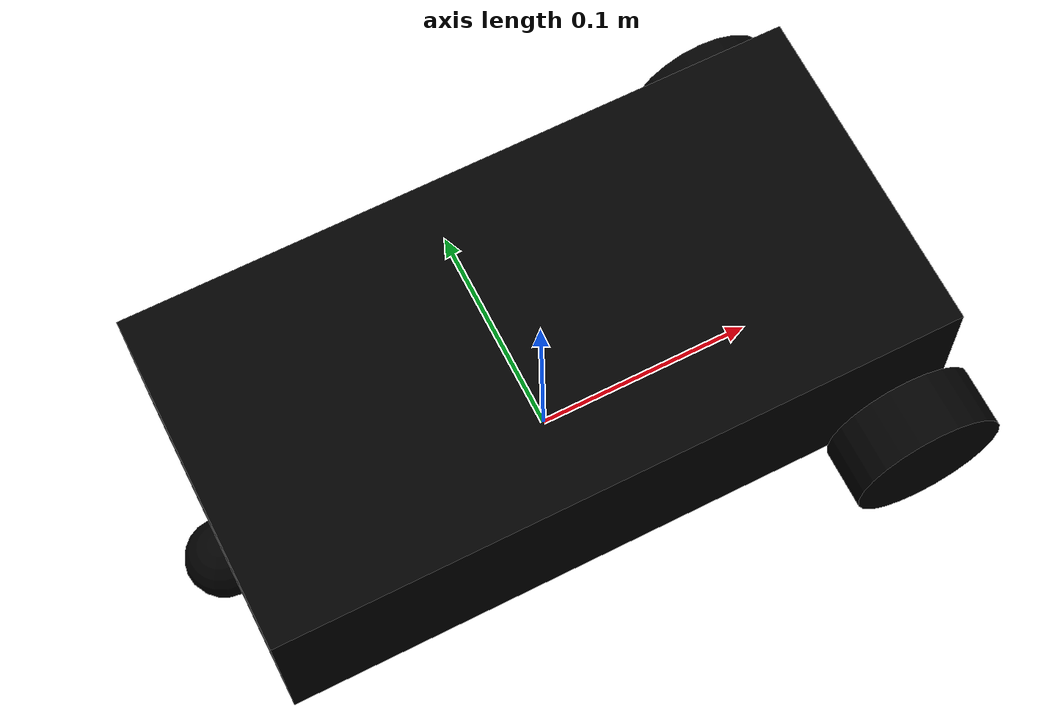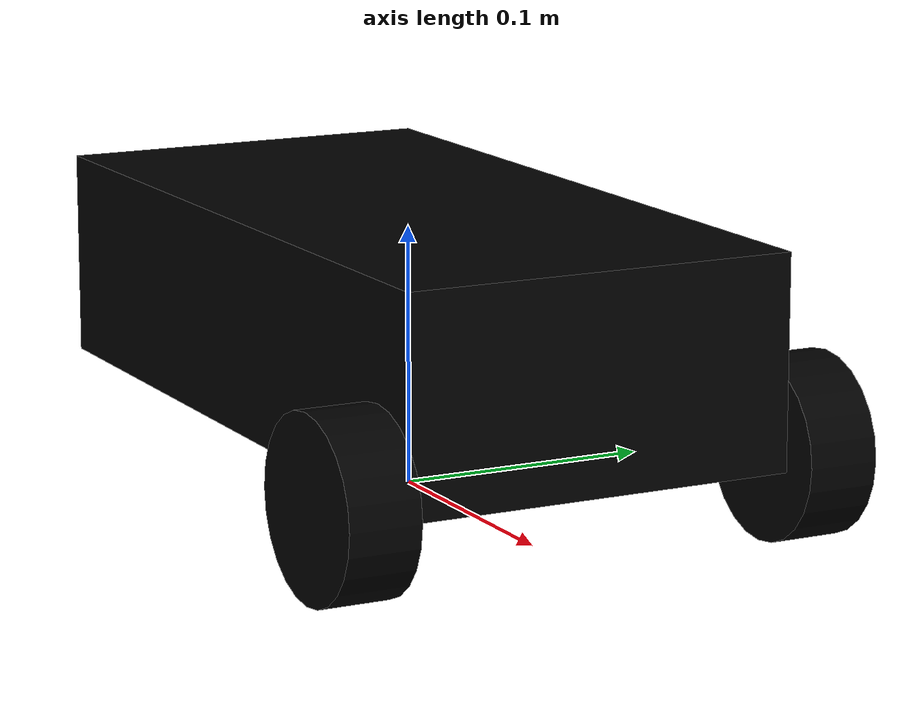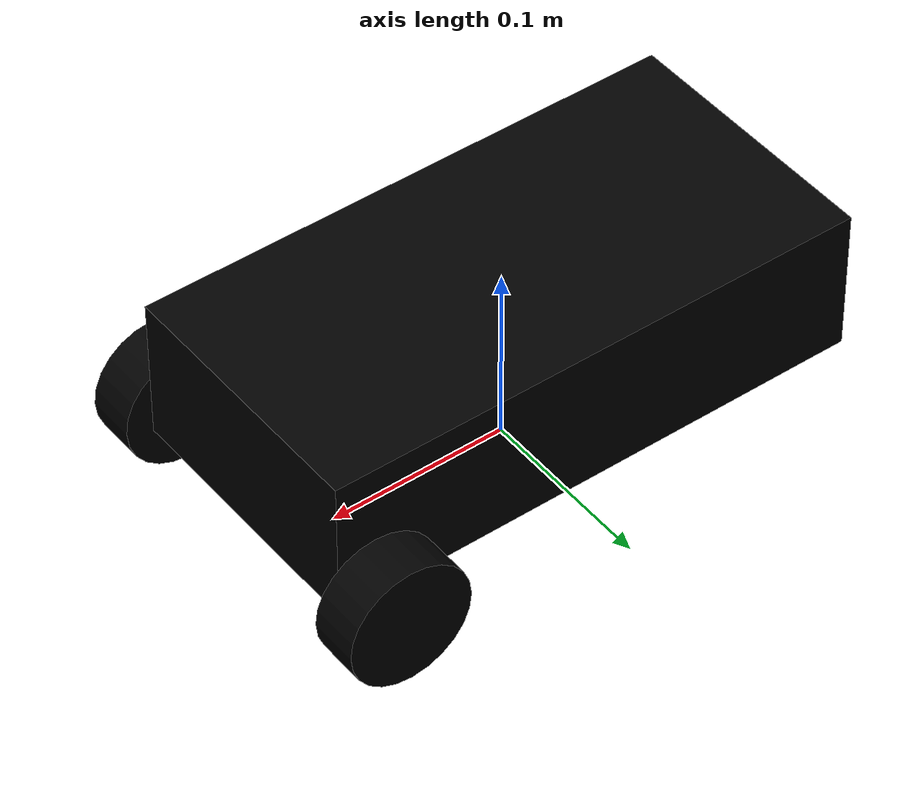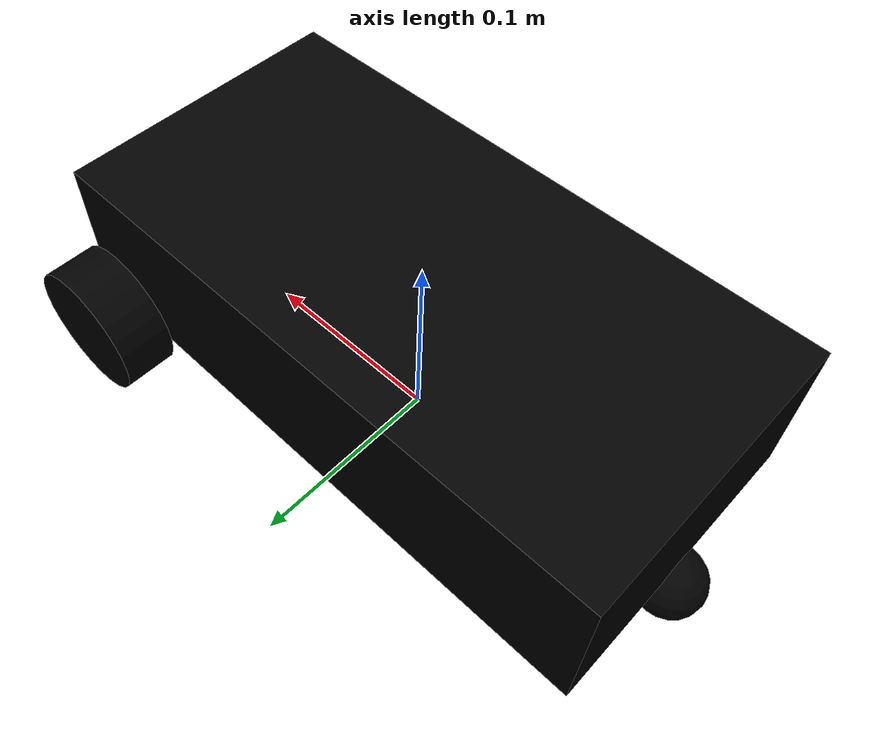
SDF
<?xml version='1.0'?>
<sdf version='1.6'>
  <model name='rover'>
    <link name='base_link'>
      <pose frame=''>-0 0 0.07 0 -0 0</pose>
      <inertial>
        <mass>1.14395</mass>
        <inertia>
          <ixx>0.126164</ixx>
          <ixy>0</ixy>
          <ixz>0</ixz>
          <iyy>0.416519</iyy>
          <iyz>0</iyz>
          <izz>0.481014</izz>
        </inertia>
        <pose frame=''>0 0 0 0 -0 0</pose>
      </inertial>
      <sensor name='sensor_ray' type='ray'>
        <pose frame=''>0 0 0.1 0 -0 0</pose>
        <ray>
          <scan>
            <horizontal>
              <samples>560</samples>
              <resolution>1</resolution>
              <min_angle>-3.14159</min_angle>
              <max_angle>3.139</max_angle>
            </horizontal>
            <vertical>
              <samples>1</samples>
              <min_angle>0</min_angle>
              <max_angle>0</max_angle>
            </vertical>
          </scan>
          <range>
            <min>0.05</min>
            <max>10</max>
          </range>
        </ray>
        <always_on>1</always_on>
        <visualize>0</visualize>
        <update_rate>100</update_rate>
        <plugin name='laser' filename='libgazebo_ros_ray_sensor.so'>
          <ros>
            <namespace>/</namespace>
            <remapping>~/out:=scan</remapping>
          </ros>
          <output_type>sensor_msgs/LaserScan</output_type>
        </plugin>
      </sensor>
      <self_collide>0</self_collide>
      <enable_wind>0</enable_wind>
      <kinematic>0</kinematic>
      <gravity>1</gravity>
      <visual name='visual'>
        <geometry>
          <box>
            <size>0.3 0.15 0.08</size>
          </box>
        </geometry>
        <material>
          <shader type='pixel'>
            <normal_map>__default__</normal_map>
          </shader>
          <script>
            <name>ModelPreview_1::base_link::visual_MATERIAL_</name>
            <uri>__default__</uri>
          </script>
          <ambient>0.451 0.824 0.086 1</ambient>
          <diffuse>0 0 0 1</diffuse>
          <specular>0 0 0 1</specular>
          <emissive>0 0 0 1</emissive>
        </material>
        <pose frame=''>0 0 0 0 -0 0</pose>
        <transparency>0</transparency>
        <cast_shadows>1</cast_shadows>
      </visual>
      <collision name='collision'>
        <laser_retro>0</laser_retro>
        <max_contacts>10</max_contacts>
        <pose frame=''>0 0 0 0 -0 0</pose>
        <geometry>
          <box>
            <size>0.3 0.15 0.08</size>
          </box>
        </geometry>
        <surface>
          <friction>
            <ode>
              <mu>1</mu>
              <mu2>1</mu2>
              <fdir1>0 0 0</fdir1>
              <slip1>0</slip1>
              <slip2>0</slip2>
            </ode>
            <torsional>
              <coefficient>1</coefficient>
              <patch_radius>0</patch_radius>
              <surface_radius>0</surface_radius>
              <use_patch_radius>1</use_patch_radius>
              <ode>
                <slip>0</slip>
              </ode>
            </torsional>
          </friction>
          <bounce>
            <restitution_coefficient>0</restitution_coefficient>
            <threshold>1e+06</threshold>
          </bounce>
          <contact>
            <collide_without_contact>0</collide_without_contact>
            <collide_without_contact_bitmask>1</collide_without_contact_bitmask>
            <collide_bitmask>1</collide_bitmask>
            <ode>
              <soft_cfm>0</soft_cfm>
              <soft_erp>0.2</soft_erp>
              <kp>1e+13</kp>
              <kd>1</kd>
              <max_vel>0</max_vel>
              <min_depth>0</min_depth>
            </ode>
            <bullet>
              <split_impulse>1</split_impulse>
              <split_impulse_penetration_threshold>-0.01</split_impulse_penetration_threshold>
              <soft_cfm>0</soft_cfm>
              <soft_erp>0.2</soft_erp>
              <kp>1e+13</kp>
              <kd>1</kd>
            </bullet>
          </contact>
        </surface>
      </collision>
    </link>
    <link name='caster'>
      <pose frame=''>-0.15 -0 0.017 0 -0 0</pose>
      <inertial>
        <mass>1</mass>
        <inertia>
          <ixx>0.1</ixx>
          <ixy>0</ixy>
          <ixz>0</ixz>
          <iyy>0.1</iyy>
          <iyz>0</iyz>
          <izz>0.1</izz>
        </inertia>
        <pose frame=''>0 0 0 0 -0 0</pose>
      </inertial>
      <self_collide>0</self_collide>
      <enable_wind>0</enable_wind>
      <kinematic>0</kinematic>
      <gravity>1</gravity>
      <visual name='visual'>
        <geometry>
          <sphere>
            <radius>0.017</radius>
          </sphere>
        </geometry>
        <material>
          <shader type='pixel'>
            <normal_map>__default__</normal_map>
          </shader>
          <script>
            <name>ModelPreview_1::caster::visual_MATERIAL_</name>
            <uri>__default__</uri>
          </script>
          <ambient>0 0 0 1</ambient>
          <diffuse>0 0 0 1</diffuse>
          <specular>0 0 0 1</specular>
          <emissive>0 0 0 1</emissive>
        </material>
        <pose frame=''>0 0 0 0 -0 0</pose>
        <transparency>0</transparency>
        <cast_shadows>1</cast_shadows>
      </visual>
      <collision name='collision'>
        <laser_retro>0</laser_retro>
        <max_contacts>10</max_contacts>
        <pose frame=''>0 0 0 0 -0 0</pose>
        <geometry>
          <sphere>
            <radius>0.017</radius>
          </sphere>
        </geometry>
        <surface>
          <friction>
            <ode>
              <mu>0</mu>
              <mu2>0</mu2>
              <fdir1>0 0 0</fdir1>
              <slip1>1</slip1>
              <slip2>1</slip2>
            </ode>
            <torsional>
              <coefficient>1</coefficient>
              <patch_radius>0</patch_radius>
              <surface_radius>0</surface_radius>
              <use_patch_radius>1</use_patch_radius>
              <ode>
                <slip>0</slip>
              </ode>
            </torsional>
          </friction>
          <bounce>
            <restitution_coefficient>0</restitution_coefficient>
            <threshold>1e+06</threshold>
          </bounce>
          <contact>
            <collide_without_contact>0</collide_without_contact>
            <collide_without_contact_bitmask>1</collide_without_contact_bitmask>
            <collide_bitmask>1</collide_bitmask>
            <ode>
              <soft_cfm>0</soft_cfm>
              <soft_erp>0.2</soft_erp>
              <kp>1e+13</kp>
              <kd>1</kd>
              <max_vel>0</max_vel>
              <min_depth>0</min_depth>
            </ode>
            <bullet>
              <split_impulse>1</split_impulse>
              <split_impulse_penetration_threshold>-0.01</split_impulse_penetration_threshold>
              <soft_cfm>0</soft_cfm>
              <soft_erp>0.2</soft_erp>
              <kp>1e+13</kp>
              <kd>1</kd>
            </bullet>
          </contact>
        </surface>
      </collision>
    </link>
    <link name='left_wheel'>
      <pose frame=''>0.13 0.09 0.034 -1.5707 -0 -0</pose>
      <inertial>
        <mass>2</mass>
        <inertia>
          <ixx>0.145833</ixx>
          <ixy>0</ixy>
          <ixz>0</ixz>
          <iyy>0.145833</iyy>
          <iyz>0</iyz>
          <izz>0.125</izz>
        </inertia>
        <pose frame=''>0 0 0 0 -0 0</pose>
      </inertial>
      <self_collide>0</self_collide>
      <enable_wind>0</enable_wind>
      <kinematic>0</kinematic>
      <gravity>1</gravity>
      <visual name='visual'>
        <geometry>
          <cylinder>
            <radius>0.034</radius>
            <length>0.0269999</length>
          </cylinder>
        </geometry>
        <material>
          <shader type='pixel'>
            <normal_map>__default__</normal_map>
          </shader>
          <script>
            <name>ModelPreview_1::left_wheel::visual_MATERIAL_</name>
            <uri>__default__</uri>
          </script>
          <ambient>0 0 0 1</ambient>
          <diffuse>0 0 0 1</diffuse>
          <specular>0 0 0 1</specular>
          <emissive>0 0 0 1</emissive>
        </material>
        <pose frame=''>0 0 0 0 -0 0</pose>
        <transparency>0</transparency>
        <cast_shadows>1</cast_shadows>
      </visual>
      <collision name='collision'>
        <laser_retro>0</laser_retro>
        <max_contacts>10</max_contacts>
        <pose frame=''>0 0 0 0 -0 0</pose>
        <geometry>
          <cylinder>
            <radius>0.034</radius>
            <length>0.027</length>
          </cylinder>
        </geometry>
        <surface>
          <friction>
            <ode>
              <mu>1</mu>
              <mu2>1</mu2>
              <fdir1>0 0 0</fdir1>
              <slip1>0</slip1>
              <slip2>0</slip2>
            </ode>
            <torsional>
              <coefficient>1</coefficient>
              <patch_radius>0</patch_radius>
              <surface_radius>0</surface_radius>
              <use_patch_radius>1</use_patch_radius>
              <ode>
                <slip>0</slip>
              </ode>
            </torsional>
          </friction>
          <bounce>
            <restitution_coefficient>0</restitution_coefficient>
            <threshold>1e+06</threshold>
          </bounce>
          <contact>
            <collide_without_contact>0</collide_without_contact>
            <collide_without_contact_bitmask>1</collide_without_contact_bitmask>
            <collide_bitmask>1</collide_bitmask>
            <ode>
              <soft_cfm>0</soft_cfm>
              <soft_erp>0.2</soft_erp>
              <kp>1e+13</kp>
              <kd>1</kd>
              <max_vel>0</max_vel>
              <min_depth>0</min_depth>
            </ode>
            <bullet>
              <split_impulse>1</split_impulse>
              <split_impulse_penetration_threshold>-0.01</split_impulse_penetration_threshold>
              <soft_cfm>0</soft_cfm>
              <soft_erp>0.2</soft_erp>
              <kp>1e+13</kp>
              <kd>1</kd>
            </bullet>
          </contact>
        </surface>
      </collision>
    </link>
    <link name='right_wheel'>
      <pose frame=''>0.13 -0.09 0.034 -1.5707 -0 -0</pose>
      <inertial>
        <mass>2</mass>
        <inertia>
          <ixx>0.145833</ixx>
          <ixy>0</ixy>
          <ixz>0</ixz>
          <iyy>0.145833</iyy>
          <iyz>0</iyz>
          <izz>0.125</izz>
        </inertia>
        <pose frame=''>0 0 0 0 -0 0</pose>
      </inertial>
      <self_collide>0</self_collide>
      <enable_wind>0</enable_wind>
      <kinematic>0</kinematic>
      <gravity>1</gravity>
      <visual name='visual'>
        <geometry>
          <cylinder>
            <radius>0.034</radius>
            <length>0.027</length>
          </cylinder>
        </geometry>
        <material>
          <shader type='pixel'>
            <normal_map>__default__</normal_map>
          </shader>
          <script>
            <name>ModelPreview_1::right_wheel::visual_MATERIAL_</name>
            <uri>__default__</uri>
          </script>
          <ambient>0 0 0 1</ambient>
          <diffuse>0 0 0 1</diffuse>
          <specular>0 0 0 1</specular>
          <emissive>0 0 0 1</emissive>
        </material>
        <pose frame=''>0 0 0 0 -0 0</pose>
        <transparency>0</transparency>
        <cast_shadows>1</cast_shadows>
      </visual>
      <collision name='collision'>
        <laser_retro>0</laser_retro>
        <max_contacts>10</max_contacts>
        <pose frame=''>0 0 0 0 -0 0</pose>
        <geometry>
          <cylinder>
            <radius>0.034</radius>
            <length>0.027</length>
          </cylinder>
        </geometry>
        <surface>
          <friction>
            <ode>
              <mu>1</mu>
              <mu2>1</mu2>
              <fdir1>0 0 0</fdir1>
              <slip1>0</slip1>
              <slip2>0</slip2>
            </ode>
            <torsional>
              <coefficient>1</coefficient>
              <patch_radius>0</patch_radius>
              <surface_radius>0</surface_radius>
              <use_patch_radius>1</use_patch_radius>
              <ode>
                <slip>0</slip>
              </ode>
            </torsional>
          </friction>
          <bounce>
            <restitution_coefficient>0</restitution_coefficient>
            <threshold>1e+06</threshold>
          </bounce>
          <contact>
            <collide_without_contact>0</collide_without_contact>
            <collide_without_contact_bitmask>1</collide_without_contact_bitmask>
            <collide_bitmask>1</collide_bitmask>
            <ode>
              <soft_cfm>0</soft_cfm>
              <soft_erp>0.2</soft_erp>
              <kp>1e+13</kp>
              <kd>1</kd>
              <max_vel>0</max_vel>
              <min_depth>0</min_depth>
            </ode>
            <bullet>
              <split_impulse>1</split_impulse>
              <split_impulse_penetration_threshold>-0.01</split_impulse_penetration_threshold>
              <soft_cfm>0</soft_cfm>
              <soft_erp>0.2</soft_erp>
              <kp>1e+13</kp>
              <kd>1</kd>
            </bullet>
          </contact>
        </surface>
      </collision>
    </link>
    <joint name='caster_wheel' type='ball'>
      <parent>base_link</parent>
      <child>caster</child>
      <pose frame=''>0 0 0 0 -0 0</pose>
      <physics>
        <ode>
          <limit>
            <cfm>0</cfm>
            <erp>0.2</erp>
          </limit>
          <suspension>
            <cfm>0</cfm>
            <erp>0.2</erp>
          </suspension>
        </ode>
      </physics>
    </joint>
    <joint name='left_wheel_joint' type='revolute'>
      <parent>base_link</parent>
      <child>left_wheel</child>
      <pose frame=''>0 0 0 0 -0 0</pose>
      <axis>
        <xyz>0 0 1</xyz>
        <use_parent_model_frame>0</use_parent_model_frame>
        <limit>
          <lower>-1.79769e+308</lower>
          <upper>1.79769e+308</upper>
          <effort>-1</effort>
          <velocity>-1</velocity>
        </limit>
        <dynamics>
          <spring_reference>0</spring_reference>
          <spring_stiffness>0</spring_stiffness>
          <damping>0</damping>
          <friction>0</friction>
        </dynamics>
      </axis>
      <physics>
        <ode>
          <limit>
            <cfm>0</cfm>
            <erp>0.2</erp>
          </limit>
          <suspension>
            <cfm>0</cfm>
            <erp>0.2</erp>
          </suspension>
        </ode>
      </physics>
    </joint>
    <joint name='right_wheel_joint' type='revolute'>
      <parent>base_link</parent>
      <child>right_wheel</child>
      <pose frame=''>0 0 0 0 -0 0</pose>
      <axis>
        <xyz>0 0 1</xyz>
        <use_parent_model_frame>0</use_parent_model_frame>
        <limit>
          <lower>-1.79769e+308</lower>
          <upper>1.79769e+308</upper>
          <effort>-1</effort>
          <velocity>-1</velocity>
        </limit>
        <dynamics>
          <spring_reference>0</spring_reference>
          <spring_stiffness>0</spring_stiffness>
          <damping>0</damping>
          <friction>0</friction>
        </dynamics>
      </axis>
      <physics>
        <ode>
          <limit>
            <cfm>0</cfm>
            <erp>0.2</erp>
          </limit>
          <suspension>
            <cfm>0</cfm>
            <erp>0.2</erp>
          </suspension>
        </ode>
      </physics>
    </joint>
    <static>0</static>
    <allow_auto_disable>1</allow_auto_disable>
    <plugin name='diff_drive' filename='libgazebo_ros_diff_drive.so'>
      <ros>
        <namespace>/</namespace>
        <remapping>cmd_vel:=cmd_vel</remapping>
        <remapping>odom:=odom</remapping>
      </ros>
      <left_joint>left_wheel_joint</left_joint>
      <right_joint>right_wheel_joint</right_joint>
      <wheel_separation>0.15</wheel_separation>
      <wheel_diameter>0.06</wheel_diameter>
      <max_wheel_torque>20</max_wheel_torque>
      <max_wheel_acceleration>1.0</max_wheel_acceleration>
      <publish_odom>1</publish_odom>
      <publish_odom_tf>1</publish_odom_tf>
      <publish_wheel_tf>1</publish_wheel_tf>
      <odometry_frame>odom</odometry_frame>
      <robot_base_frame>base_link</robot_base_frame>
    </plugin>
  </model>
</sdf>
